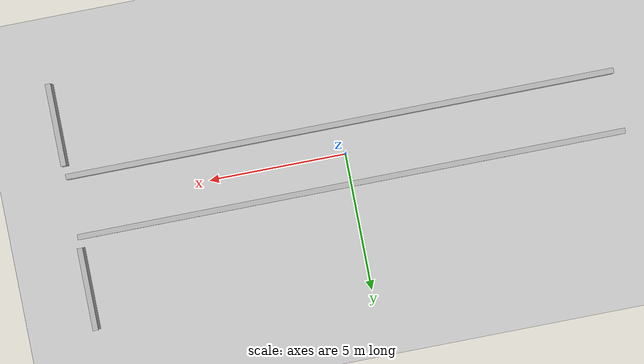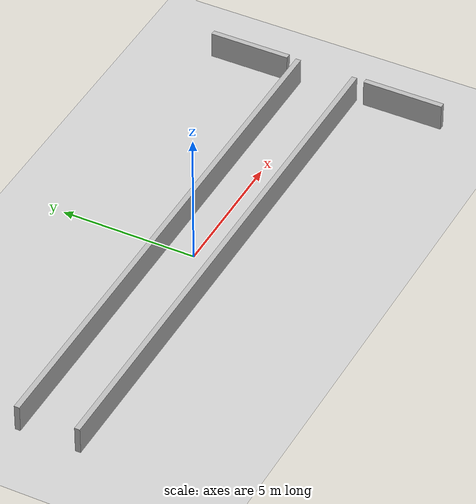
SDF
<sdf version="1.6">
 <world name="enhanced_lab">
  <include><uri>model/sun</uri></include>
  <include><uri>model/ground_plane</uri></include>
  <model name="long_wall_left">
   <static>true</static>
   <link name="link">
    <collision name="collision"><geometry><box><size>20 0.2 1</size></box></geometry></collision>
    <visual name="visual"><geometry><box><size>20 0.2 1</size></box></geometry></visual>
    <pose>0 1.1 0.5 0 0 0</pose>
   </link>
  </model>
  <model name="long_wall_right">
   <static>true</static>
   <link name="link">
    <collision name="collision"><geometry><box><size>20 0.2 1</size></box></geometry></collision>
    <visual name="visual"><geometry><box><size>20 0.2 1</size></box></geometry></visual>
    <pose>0 -1.1 0.5 0 0 0</pose>
   </link>
  </model>
  <model name="side_wall_1">
   <static>true</static>
   <link name="link">
    <collision name="collision"><geometry><box><size>0.2 3 1</size></box></geometry></collision>
    <visual name="visual"><geometry><box><size>0.2 3 1</size></box></geometry></visual>
    <pose>10 3 0.5 0 0 0</pose>
   </link>
  </model>
  <model name="side_wall_2">
   <static>true</static>
   <link name="link">
    <collision name="collision"><geometry><box><size>0.2 3 1</size></box></geometry></collision>
    <visual name="visual"><geometry><box><size>0.2 3 1</size></box></geometry></visual>
    <pose>10 -3 0.5 0 0 0</pose>
   </link>
  </model>
 </world>
</sdf>
